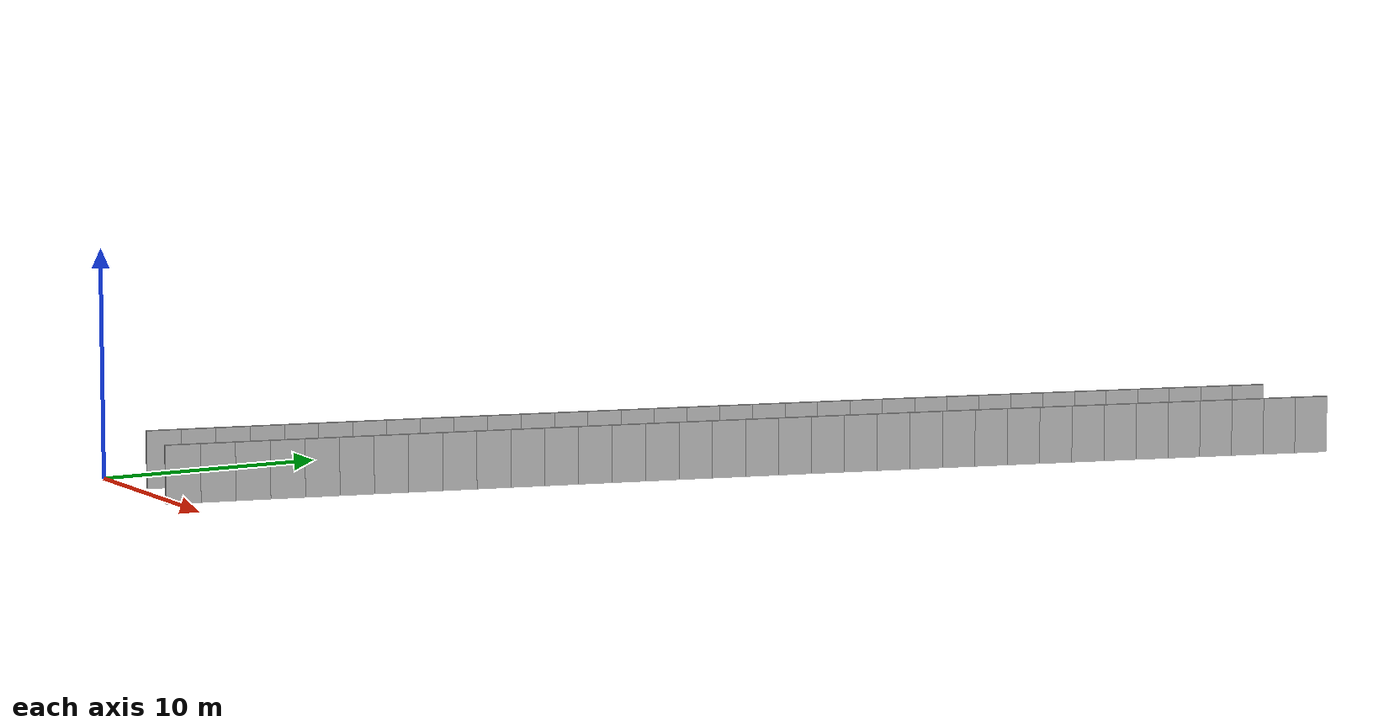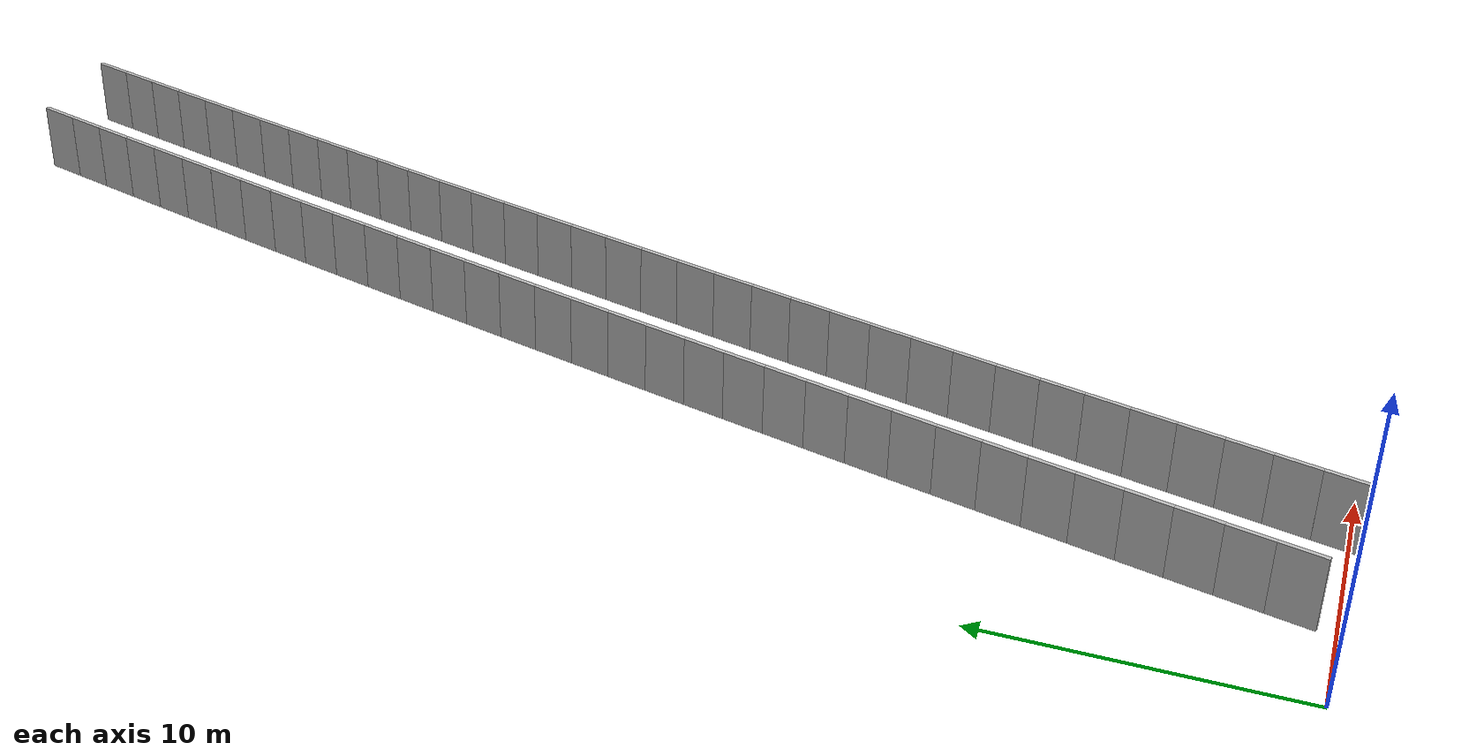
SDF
<?xml version="1.0" ?>
<sdf version="1.6">
  <model name="sps_0330">
    <pose frame="">0 0 0 0 -0 0</pose>
    <static>1</static>
    <self_collide>0</self_collide>
    <allow_auto_disable>0</allow_auto_disable>
    <link name="Wall5034">
      <kinematic>0</kinematic>
      <gravity>1</gravity>
      <self_collide>0</self_collide>
      <collision name="collision">
        <geometry>
          <box>
            <size>1.49648 0.15 2.5</size>
          </box>
        </geometry>
        <pose frame="">0 0 0 0 -0 0</pose>
      </collision>
      <visual name="visual">
        <geometry>
          <box>
            <size>1.49648 0.15 2.5</size>
          </box>
        </geometry>
        <pose frame="">0 0 0 0 -0 0</pose>
        <cast_shadows>1</cast_shadows>
        <transparency>0.0</transparency>
      </visual>
      <pose frame="">20.0343 49.6835 1.25 0 0 -1.8464</pose>
    </link>
    <link name="Wall5035">
      <kinematic>0</kinematic>
      <gravity>1</gravity>
      <self_collide>0</self_collide>
      <collision name="collision">
        <geometry>
          <box>
            <size>1.49658 0.15 2.5</size>
          </box>
        </geometry>
        <pose frame="">0 0 0 0 -0 0</pose>
      </collision>
      <visual name="visual">
        <geometry>
          <box>
            <size>1.49658 0.15 2.5</size>
          </box>
        </geometry>
        <pose frame="">0 0 0 0 -0 0</pose>
        <cast_shadows>1</cast_shadows>
        <transparency>0.0</transparency>
      </visual>
      <pose frame="">19.6283 48.2431 1.25 0 0 -1.84468</pose>
    </link>
    <link name="Wall5036">
      <kinematic>0</kinematic>
      <gravity>1</gravity>
      <self_collide>0</self_collide>
      <collision name="collision">
        <geometry>
          <box>
            <size>1.49657 0.15 2.5</size>
          </box>
        </geometry>
        <pose frame="">0 0 0 0 -0 0</pose>
      </collision>
      <visual name="visual">
        <geometry>
          <box>
            <size>1.49657 0.15 2.5</size>
          </box>
        </geometry>
        <pose frame="">0 0 0 0 -0 0</pose>
        <cast_shadows>1</cast_shadows>
        <transparency>0.0</transparency>
      </visual>
      <pose frame="">19.2246 46.802 1.25 0 0 -1.84316</pose>
    </link>
    <link name="Wall5037">
      <kinematic>0</kinematic>
      <gravity>1</gravity>
      <self_collide>0</self_collide>
      <collision name="collision">
        <geometry>
          <box>
            <size>1.49652 0.15 2.5</size>
          </box>
        </geometry>
        <pose frame="">0 0 0 0 -0 0</pose>
      </collision>
      <visual name="visual">
        <geometry>
          <box>
            <size>1.49652 0.15 2.5</size>
          </box>
        </geometry>
        <pose frame="">0 0 0 0 -0 0</pose>
        <cast_shadows>1</cast_shadows>
        <transparency>0.0</transparency>
      </visual>
      <pose frame="">18.8232 45.3603 1.25 0 0 -1.84152</pose>
    </link>
    <link name="Wall5038">
      <kinematic>0</kinematic>
      <gravity>1</gravity>
      <self_collide>0</self_collide>
      <collision name="collision">
        <geometry>
          <box>
            <size>1.49652 0.15 2.5</size>
          </box>
        </geometry>
        <pose frame="">0 0 0 0 -0 0</pose>
      </collision>
      <visual name="visual">
        <geometry>
          <box>
            <size>1.49652 0.15 2.5</size>
          </box>
        </geometry>
        <pose frame="">0 0 0 0 -0 0</pose>
        <cast_shadows>1</cast_shadows>
        <transparency>0.0</transparency>
      </visual>
      <pose frame="">18.4241 43.918 1.25 0 0 -1.83999</pose>
    </link>
    <link name="Wall5039">
      <kinematic>0</kinematic>
      <gravity>1</gravity>
      <self_collide>0</self_collide>
      <collision name="collision">
        <geometry>
          <box>
            <size>1.49642 0.15 2.5</size>
          </box>
        </geometry>
        <pose frame="">0 0 0 0 -0 0</pose>
      </collision>
      <visual name="visual">
        <geometry>
          <box>
            <size>1.49642 0.15 2.5</size>
          </box>
        </geometry>
        <pose frame="">0 0 0 0 -0 0</pose>
        <cast_shadows>1</cast_shadows>
        <transparency>0.0</transparency>
      </visual>
      <pose frame="">18.0272 42.4751 1.25 0 0 -1.83836</pose>
    </link>
    <link name="Wall5040">
      <kinematic>0</kinematic>
      <gravity>1</gravity>
      <self_collide>0</self_collide>
      <collision name="collision">
        <geometry>
          <box>
            <size>1.49665 0.15 2.5</size>
          </box>
        </geometry>
        <pose frame="">0 0 0 0 -0 0</pose>
      </collision>
      <visual name="visual">
        <geometry>
          <box>
            <size>1.49665 0.15 2.5</size>
          </box>
        </geometry>
        <pose frame="">0 0 0 0 -0 0</pose>
        <cast_shadows>1</cast_shadows>
        <transparency>0.0</transparency>
      </visual>
      <pose frame="">17.6327 41.0315 1.25 0 0 -1.83676</pose>
    </link>
    <link name="Wall5041">
      <kinematic>0</kinematic>
      <gravity>1</gravity>
      <self_collide>0</self_collide>
      <collision name="collision">
        <geometry>
          <box>
            <size>1.49643 0.15 2.5</size>
          </box>
        </geometry>
        <pose frame="">0 0 0 0 -0 0</pose>
      </collision>
      <visual name="visual">
        <geometry>
          <box>
            <size>1.49643 0.15 2.5</size>
          </box>
        </geometry>
        <pose frame="">0 0 0 0 -0 0</pose>
        <cast_shadows>1</cast_shadows>
        <transparency>0.0</transparency>
      </visual>
      <pose frame="">17.2405 39.5873 1.25 0 0 -1.83527</pose>
    </link>
    <link name="Wall5042">
      <kinematic>0</kinematic>
      <gravity>1</gravity>
      <self_collide>0</self_collide>
      <collision name="collision">
        <geometry>
          <box>
            <size>1.49635 0.15 2.5</size>
          </box>
        </geometry>
        <pose frame="">0 0 0 0 -0 0</pose>
      </collision>
      <visual name="visual">
        <geometry>
          <box>
            <size>1.49635 0.15 2.5</size>
          </box>
        </geometry>
        <pose frame="">0 0 0 0 -0 0</pose>
        <cast_shadows>1</cast_shadows>
        <transparency>0.0</transparency>
      </visual>
      <pose frame="">16.8505 38.1426 1.25 0 0 -1.83368</pose>
    </link>
    <link name="Wall5043">
      <kinematic>0</kinematic>
      <gravity>1</gravity>
      <self_collide>0</self_collide>
      <collision name="collision">
        <geometry>
          <box>
            <size>1.4966 0.15 2.5</size>
          </box>
        </geometry>
        <pose frame="">0 0 0 0 -0 0</pose>
      </collision>
      <visual name="visual">
        <geometry>
          <box>
            <size>1.4966 0.15 2.5</size>
          </box>
        </geometry>
        <pose frame="">0 0 0 0 -0 0</pose>
        <cast_shadows>1</cast_shadows>
        <transparency>0.0</transparency>
      </visual>
      <pose frame="">16.4627 36.6972 1.25 0 0 -1.83208</pose>
    </link>
    <link name="Wall5044">
      <kinematic>0</kinematic>
      <gravity>1</gravity>
      <self_collide>0</self_collide>
      <collision name="collision">
        <geometry>
          <box>
            <size>1.49656 0.15 2.5</size>
          </box>
        </geometry>
        <pose frame="">0 0 0 0 -0 0</pose>
      </collision>
      <visual name="visual">
        <geometry>
          <box>
            <size>1.49656 0.15 2.5</size>
          </box>
        </geometry>
        <pose frame="">0 0 0 0 -0 0</pose>
        <cast_shadows>1</cast_shadows>
        <transparency>0.0</transparency>
      </visual>
      <pose frame="">16.0774 35.2511 1.25 0 0 -1.8304</pose>
    </link>
    <link name="Wall5045">
      <kinematic>0</kinematic>
      <gravity>1</gravity>
      <self_collide>0</self_collide>
      <collision name="collision">
        <geometry>
          <box>
            <size>1.49642 0.15 2.5</size>
          </box>
        </geometry>
        <pose frame="">0 0 0 0 -0 0</pose>
      </collision>
      <visual name="visual">
        <geometry>
          <box>
            <size>1.49642 0.15 2.5</size>
          </box>
        </geometry>
        <pose frame="">0 0 0 0 -0 0</pose>
        <cast_shadows>1</cast_shadows>
        <transparency>0.0</transparency>
      </visual>
      <pose frame="">15.6943 33.8045 1.25 0 0 -1.82894</pose>
    </link>
    <link name="Wall5046">
      <kinematic>0</kinematic>
      <gravity>1</gravity>
      <self_collide>0</self_collide>
      <collision name="collision">
        <geometry>
          <box>
            <size>1.49669 0.15 2.5</size>
          </box>
        </geometry>
        <pose frame="">0 0 0 0 -0 0</pose>
      </collision>
      <visual name="visual">
        <geometry>
          <box>
            <size>1.49669 0.15 2.5</size>
          </box>
        </geometry>
        <pose frame="">0 0 0 0 -0 0</pose>
        <cast_shadows>1</cast_shadows>
        <transparency>0.0</transparency>
      </visual>
      <pose frame="">15.3135 32.3572 1.25 0 0 -1.82721</pose>
    </link>
    <link name="Wall5047">
      <kinematic>0</kinematic>
      <gravity>1</gravity>
      <self_collide>0</self_collide>
      <collision name="collision">
        <geometry>
          <box>
            <size>1.49638 0.15 2.5</size>
          </box>
        </geometry>
        <pose frame="">0 0 0 0 -0 0</pose>
      </collision>
      <visual name="visual">
        <geometry>
          <box>
            <size>1.49638 0.15 2.5</size>
          </box>
        </geometry>
        <pose frame="">0 0 0 0 -0 0</pose>
        <cast_shadows>1</cast_shadows>
        <transparency>0.0</transparency>
      </visual>
      <pose frame="">14.935 30.9093 1.25 0 0 -1.82579</pose>
    </link>
    <link name="Wall5048">
      <kinematic>0</kinematic>
      <gravity>1</gravity>
      <self_collide>0</self_collide>
      <collision name="collision">
        <geometry>
          <box>
            <size>1.4966 0.15 2.5</size>
          </box>
        </geometry>
        <pose frame="">0 0 0 0 -0 0</pose>
      </collision>
      <visual name="visual">
        <geometry>
          <box>
            <size>1.4966 0.15 2.5</size>
          </box>
        </geometry>
        <pose frame="">0 0 0 0 -0 0</pose>
        <cast_shadows>1</cast_shadows>
        <transparency>0.0</transparency>
      </visual>
      <pose frame="">14.5587 29.4609 1.25 0 0 -1.82406</pose>
    </link>
    <link name="Wall5049">
      <kinematic>0</kinematic>
      <gravity>1</gravity>
      <self_collide>0</self_collide>
      <collision name="collision">
        <geometry>
          <box>
            <size>1.49658 0.15 2.5</size>
          </box>
        </geometry>
        <pose frame="">0 0 0 0 -0 0</pose>
      </collision>
      <visual name="visual">
        <geometry>
          <box>
            <size>1.49658 0.15 2.5</size>
          </box>
        </geometry>
        <pose frame="">0 0 0 0 -0 0</pose>
        <cast_shadows>1</cast_shadows>
        <transparency>0.0</transparency>
      </visual>
      <pose frame="">14.1848 28.0118 1.25 0 0 -1.82255</pose>
    </link>
    <link name="Wall5050">
      <kinematic>0</kinematic>
      <gravity>1</gravity>
      <self_collide>0</self_collide>
      <collision name="collision">
        <geometry>
          <box>
            <size>1.49639 0.15 2.5</size>
          </box>
        </geometry>
        <pose frame="">0 0 0 0 -0 0</pose>
      </collision>
      <visual name="visual">
        <geometry>
          <box>
            <size>1.49639 0.15 2.5</size>
          </box>
        </geometry>
        <pose frame="">0 0 0 0 -0 0</pose>
        <cast_shadows>1</cast_shadows>
        <transparency>0.0</transparency>
      </visual>
      <pose frame="">13.8131 26.5622 1.25 0 0 -1.82107</pose>
    </link>
    <link name="Wall5051">
      <kinematic>0</kinematic>
      <gravity>1</gravity>
      <self_collide>0</self_collide>
      <collision name="collision">
        <geometry>
          <box>
            <size>1.49657 0.15 2.5</size>
          </box>
        </geometry>
        <pose frame="">0 0 0 0 -0 0</pose>
      </collision>
      <visual name="visual">
        <geometry>
          <box>
            <size>1.49657 0.15 2.5</size>
          </box>
        </geometry>
        <pose frame="">0 0 0 0 -0 0</pose>
        <cast_shadows>1</cast_shadows>
        <transparency>0.0</transparency>
      </visual>
      <pose frame="">13.4438 25.112 1.25 0 0 -1.81923</pose>
    </link>
    <link name="Wall5052">
      <kinematic>0</kinematic>
      <gravity>1</gravity>
      <self_collide>0</self_collide>
      <collision name="collision">
        <geometry>
          <box>
            <size>1.49643 0.15 2.5</size>
          </box>
        </geometry>
        <pose frame="">0 0 0 0 -0 0</pose>
      </collision>
      <visual name="visual">
        <geometry>
          <box>
            <size>1.49643 0.15 2.5</size>
          </box>
        </geometry>
        <pose frame="">0 0 0 0 -0 0</pose>
        <cast_shadows>1</cast_shadows>
        <transparency>0.0</transparency>
      </visual>
      <pose frame="">13.0769 23.6612 1.25 0 0 -1.81786</pose>
    </link>
    <link name="Wall5053">
      <kinematic>0</kinematic>
      <gravity>1</gravity>
      <self_collide>0</self_collide>
      <collision name="collision">
        <geometry>
          <box>
            <size>1.49663 0.15 2.5</size>
          </box>
        </geometry>
        <pose frame="">0 0 0 0 -0 0</pose>
      </collision>
      <visual name="visual">
        <geometry>
          <box>
            <size>1.49663 0.15 2.5</size>
          </box>
        </geometry>
        <pose frame="">0 0 0 0 -0 0</pose>
        <cast_shadows>1</cast_shadows>
        <transparency>0.0</transparency>
      </visual>
      <pose frame="">12.7121 22.2098 1.25 0 0 -1.81623</pose>
    </link>
    <link name="Wall5054">
      <kinematic>0</kinematic>
      <gravity>1</gravity>
      <self_collide>0</self_collide>
      <collision name="collision">
        <geometry>
          <box>
            <size>1.49663 0.15 2.5</size>
          </box>
        </geometry>
        <pose frame="">0 0 0 0 -0 0</pose>
      </collision>
      <visual name="visual">
        <geometry>
          <box>
            <size>1.49663 0.15 2.5</size>
          </box>
        </geometry>
        <pose frame="">0 0 0 0 -0 0</pose>
        <cast_shadows>1</cast_shadows>
        <transparency>0.0</transparency>
      </visual>
      <pose frame="">12.3496 20.7577 1.25 0 0 -1.81455</pose>
    </link>
    <link name="Wall5055">
      <kinematic>0</kinematic>
      <gravity>1</gravity>
      <self_collide>0</self_collide>
      <collision name="collision">
        <geometry>
          <box>
            <size>1.49651 0.15 2.5</size>
          </box>
        </geometry>
        <pose frame="">0 0 0 0 -0 0</pose>
      </collision>
      <visual name="visual">
        <geometry>
          <box>
            <size>1.49651 0.15 2.5</size>
          </box>
        </geometry>
        <pose frame="">0 0 0 0 -0 0</pose>
        <cast_shadows>1</cast_shadows>
        <transparency>0.0</transparency>
      </visual>
      <pose frame="">11.9896 19.3051 1.25 0 0 -1.81302</pose>
    </link>
    <link name="Wall5056">
      <kinematic>0</kinematic>
      <gravity>1</gravity>
      <self_collide>0</self_collide>
      <collision name="collision">
        <geometry>
          <box>
            <size>1.49648 0.15 2.5</size>
          </box>
        </geometry>
        <pose frame="">0 0 0 0 -0 0</pose>
      </collision>
      <visual name="visual">
        <geometry>
          <box>
            <size>1.49648 0.15 2.5</size>
          </box>
        </geometry>
        <pose frame="">0 0 0 0 -0 0</pose>
        <cast_shadows>1</cast_shadows>
        <transparency>0.0</transparency>
      </visual>
      <pose frame="">11.6318 17.852 1.25 0 0 -1.81142</pose>
    </link>
    <link name="Wall5057">
      <kinematic>0</kinematic>
      <gravity>1</gravity>
      <self_collide>0</self_collide>
      <collision name="collision">
        <geometry>
          <box>
            <size>1.4966 0.15 2.5</size>
          </box>
        </geometry>
        <pose frame="">0 0 0 0 -0 0</pose>
      </collision>
      <visual name="visual">
        <geometry>
          <box>
            <size>1.4966 0.15 2.5</size>
          </box>
        </geometry>
        <pose frame="">0 0 0 0 -0 0</pose>
        <cast_shadows>1</cast_shadows>
        <transparency>0.0</transparency>
      </visual>
      <pose frame="">11.2763 16.3983 1.25 0 0 -1.80985</pose>
    </link>
    <link name="Wall5058">
      <kinematic>0</kinematic>
      <gravity>1</gravity>
      <self_collide>0</self_collide>
      <collision name="collision">
        <geometry>
          <box>
            <size>1.49641 0.15 2.5</size>
          </box>
        </geometry>
        <pose frame="">0 0 0 0 -0 0</pose>
      </collision>
      <visual name="visual">
        <geometry>
          <box>
            <size>1.49641 0.15 2.5</size>
          </box>
        </geometry>
        <pose frame="">0 0 0 0 -0 0</pose>
        <cast_shadows>1</cast_shadows>
        <transparency>0.0</transparency>
      </visual>
      <pose frame="">10.9231 14.9441 1.25 0 0 -1.80829</pose>
    </link>
    <link name="Wall5059">
      <kinematic>0</kinematic>
      <gravity>1</gravity>
      <self_collide>0</self_collide>
      <collision name="collision">
        <geometry>
          <box>
            <size>1.49665 0.15 2.5</size>
          </box>
        </geometry>
        <pose frame="">0 0 0 0 -0 0</pose>
      </collision>
      <visual name="visual">
        <geometry>
          <box>
            <size>1.49665 0.15 2.5</size>
          </box>
        </geometry>
        <pose frame="">0 0 0 0 -0 0</pose>
        <cast_shadows>1</cast_shadows>
        <transparency>0.0</transparency>
      </visual>
      <pose frame="">10.5721 13.4893 1.25 0 0 -1.8067</pose>
    </link>
    <link name="Wall5060">
      <kinematic>0</kinematic>
      <gravity>1</gravity>
      <self_collide>0</self_collide>
      <collision name="collision">
        <geometry>
          <box>
            <size>1.49649 0.15 2.5</size>
          </box>
        </geometry>
        <pose frame="">0 0 0 0 -0 0</pose>
      </collision>
      <visual name="visual">
        <geometry>
          <box>
            <size>1.49649 0.15 2.5</size>
          </box>
        </geometry>
        <pose frame="">0 0 0 0 -0 0</pose>
        <cast_shadows>1</cast_shadows>
        <transparency>0.0</transparency>
      </visual>
      <pose frame="">10.2234 12.0339 1.25 0 0 -1.80521</pose>
    </link>
    <link name="Wall5061">
      <kinematic>0</kinematic>
      <gravity>1</gravity>
      <self_collide>0</self_collide>
      <collision name="collision">
        <geometry>
          <box>
            <size>1.4966 0.15 2.5</size>
          </box>
        </geometry>
        <pose frame="">0 0 0 0 -0 0</pose>
      </collision>
      <visual name="visual">
        <geometry>
          <box>
            <size>1.4966 0.15 2.5</size>
          </box>
        </geometry>
        <pose frame="">0 0 0 0 -0 0</pose>
        <cast_shadows>1</cast_shadows>
        <transparency>0.0</transparency>
      </visual>
      <pose frame="">9.87704 10.578 1.25 0 0 -1.80356</pose>
    </link>
    <link name="Wall5062">
      <kinematic>0</kinematic>
      <gravity>1</gravity>
      <self_collide>0</self_collide>
      <collision name="collision">
        <geometry>
          <box>
            <size>1.49639 0.15 2.5</size>
          </box>
        </geometry>
        <pose frame="">0 0 0 0 -0 0</pose>
      </collision>
      <visual name="visual">
        <geometry>
          <box>
            <size>1.49639 0.15 2.5</size>
          </box>
        </geometry>
        <pose frame="">0 0 0 0 -0 0</pose>
        <cast_shadows>1</cast_shadows>
        <transparency>0.0</transparency>
      </visual>
      <pose frame="">9.53304 9.12157 1.25 0 0 -1.80192</pose>
    </link>
    <link name="Wall5063">
      <kinematic>0</kinematic>
      <gravity>1</gravity>
      <self_collide>0</self_collide>
      <collision name="collision">
        <geometry>
          <box>
            <size>1.49643 0.15 2.5</size>
          </box>
        </geometry>
        <pose frame="">0 0 0 0 -0 0</pose>
      </collision>
      <visual name="visual">
        <geometry>
          <box>
            <size>1.49643 0.15 2.5</size>
          </box>
        </geometry>
        <pose frame="">0 0 0 0 -0 0</pose>
        <cast_shadows>1</cast_shadows>
        <transparency>0.0</transparency>
      </visual>
      <pose frame="">9.19137 7.66469 1.25 0 0 -1.8004</pose>
    </link>
    <link name="Wall5064">
      <kinematic>0</kinematic>
      <gravity>1</gravity>
      <self_collide>0</self_collide>
      <collision name="collision">
        <geometry>
          <box>
            <size>1.49654 0.15 2.5</size>
          </box>
        </geometry>
        <pose frame="">0 0 0 0 -0 0</pose>
      </collision>
      <visual name="visual">
        <geometry>
          <box>
            <size>1.49654 0.15 2.5</size>
          </box>
        </geometry>
        <pose frame="">0 0 0 0 -0 0</pose>
        <cast_shadows>1</cast_shadows>
        <transparency>0.0</transparency>
      </visual>
      <pose frame="">8.85198 6.2072 1.25 0 0 -1.79875</pose>
    </link>
    <link name="Wall5065">
      <kinematic>0</kinematic>
      <gravity>1</gravity>
      <self_collide>0</self_collide>
      <collision name="collision">
        <geometry>
          <box>
            <size>1.49654 0.15 2.5</size>
          </box>
        </geometry>
        <pose frame="">0 0 0 0 -0 0</pose>
      </collision>
      <visual name="visual">
        <geometry>
          <box>
            <size>1.49654 0.15 2.5</size>
          </box>
        </geometry>
        <pose frame="">0 0 0 0 -0 0</pose>
        <cast_shadows>1</cast_shadows>
        <transparency>0.0</transparency>
      </visual>
      <pose frame="">8.51498 4.7491 1.25 0 0 -1.79712</pose>
    </link>
    <link name="Wall5066">
      <kinematic>0</kinematic>
      <gravity>1</gravity>
      <self_collide>0</self_collide>
      <collision name="collision">
        <geometry>
          <box>
            <size>1.49646 0.15 2.5</size>
          </box>
        </geometry>
        <pose frame="">0 0 0 0 -0 0</pose>
      </collision>
      <visual name="visual">
        <geometry>
          <box>
            <size>1.49646 0.15 2.5</size>
          </box>
        </geometry>
        <pose frame="">0 0 0 0 -0 0</pose>
        <cast_shadows>1</cast_shadows>
        <transparency>0.0</transparency>
      </visual>
      <pose frame="">8.18026 3.29051 1.25 0 0 -1.79562</pose>
    </link>
    <link name="Wall5067">
      <kinematic>0</kinematic>
      <gravity>1</gravity>
      <self_collide>0</self_collide>
      <collision name="collision">
        <geometry>
          <box>
            <size>1.49657 0.15 2.5</size>
          </box>
        </geometry>
        <pose frame="">0 0 0 0 -0 0</pose>
      </collision>
      <visual name="visual">
        <geometry>
          <box>
            <size>1.49657 0.15 2.5</size>
          </box>
        </geometry>
        <pose frame="">0 0 0 0 -0 0</pose>
        <cast_shadows>1</cast_shadows>
        <transparency>0.0</transparency>
      </visual>
      <pose frame="">7.84774 1.8314 1.25 0 0 -1.7941</pose>
    </link>
    <link name="Wall5068">
      <kinematic>0</kinematic>
      <gravity>1</gravity>
      <self_collide>0</self_collide>
      <collision name="collision">
        <geometry>
          <box>
            <size>1.49659 0.15 2.5</size>
          </box>
        </geometry>
        <pose frame="">0 0 0 0 -0 0</pose>
      </collision>
      <visual name="visual">
        <geometry>
          <box>
            <size>1.49659 0.15 2.5</size>
          </box>
        </geometry>
        <pose frame="">0 0 0 0 -0 0</pose>
        <cast_shadows>1</cast_shadows>
        <transparency>0.0</transparency>
      </visual>
      <pose frame="">7.51763 0.371688 1.25 0 0 -1.7923</pose>
    </link>
    <link name="Wall6831">
      <kinematic>0</kinematic>
      <gravity>1</gravity>
      <self_collide>0</self_collide>
      <collision name="collision">
        <geometry>
          <box>
            <size>1.50323 0.15 2.5</size>
          </box>
        </geometry>
        <pose frame="">0 0 0 0 -0 0</pose>
      </collision>
      <visual name="visual">
        <geometry>
          <box>
            <size>1.50323 0.15 2.5</size>
          </box>
        </geometry>
        <pose frame="">0 0 0 0 -0 0</pose>
        <cast_shadows>1</cast_shadows>
        <transparency>0.0</transparency>
      </visual>
      <pose frame="">15.6434 49.3631 1.25 0 0 -1.84466</pose>
    </link>
    <link name="Wall6832">
      <kinematic>0</kinematic>
      <gravity>1</gravity>
      <self_collide>0</self_collide>
      <collision name="collision">
        <geometry>
          <box>
            <size>1.503 0.15 2.5</size>
          </box>
        </geometry>
        <pose frame="">0 0 0 0 -0 0</pose>
      </collision>
      <visual name="visual">
        <geometry>
          <box>
            <size>1.503 0.15 2.5</size>
          </box>
        </geometry>
        <pose frame="">0 0 0 0 -0 0</pose>
        <cast_shadows>1</cast_shadows>
        <transparency>0.0</transparency>
      </visual>
      <pose frame="">15.2379 47.9157 1.25 0 0 -1.84323</pose>
    </link>
    <link name="Wall6833">
      <kinematic>0</kinematic>
      <gravity>1</gravity>
      <self_collide>0</self_collide>
      <collision name="collision">
        <geometry>
          <box>
            <size>1.50319 0.15 2.5</size>
          </box>
        </geometry>
        <pose frame="">0 0 0 0 -0 0</pose>
      </collision>
      <visual name="visual">
        <geometry>
          <box>
            <size>1.50319 0.15 2.5</size>
          </box>
        </geometry>
        <pose frame="">0 0 0 0 -0 0</pose>
        <cast_shadows>1</cast_shadows>
        <transparency>0.0</transparency>
      </visual>
      <pose frame="">14.8346 46.4677 1.25 0 0 -1.84155</pose>
    </link>
    <link name="Wall6834">
      <kinematic>0</kinematic>
      <gravity>1</gravity>
      <self_collide>0</self_collide>
      <collision name="collision">
        <geometry>
          <box>
            <size>1.50307 0.15 2.5</size>
          </box>
        </geometry>
        <pose frame="">0 0 0 0 -0 0</pose>
      </collision>
      <visual name="visual">
        <geometry>
          <box>
            <size>1.50307 0.15 2.5</size>
          </box>
        </geometry>
        <pose frame="">0 0 0 0 -0 0</pose>
        <cast_shadows>1</cast_shadows>
        <transparency>0.0</transparency>
      </visual>
      <pose frame="">14.4338 45.019 1.25 0 0 -1.83989</pose>
    </link>
    <link name="Wall6835">
      <kinematic>0</kinematic>
      <gravity>1</gravity>
      <self_collide>0</self_collide>
      <collision name="collision">
        <geometry>
          <box>
            <size>1.50289 0.15 2.5</size>
          </box>
        </geometry>
        <pose frame="">0 0 0 0 -0 0</pose>
      </collision>
      <visual name="visual">
        <geometry>
          <box>
            <size>1.50289 0.15 2.5</size>
          </box>
        </geometry>
        <pose frame="">0 0 0 0 -0 0</pose>
        <cast_shadows>1</cast_shadows>
        <transparency>0.0</transparency>
      </visual>
      <pose frame="">14.0353 43.5698 1.25 0 0 -1.8384</pose>
    </link>
    <link name="Wall6836">
      <kinematic>0</kinematic>
      <gravity>1</gravity>
      <self_collide>0</self_collide>
      <collision name="collision">
        <geometry>
          <box>
            <size>1.50308 0.15 2.5</size>
          </box>
        </geometry>
        <pose frame="">0 0 0 0 -0 0</pose>
      </collision>
      <visual name="visual">
        <geometry>
          <box>
            <size>1.50308 0.15 2.5</size>
          </box>
        </geometry>
        <pose frame="">0 0 0 0 -0 0</pose>
        <cast_shadows>1</cast_shadows>
        <transparency>0.0</transparency>
      </visual>
      <pose frame="">13.639 42.12 1.25 0 0 -1.83685</pose>
    </link>
    <link name="Wall6837">
      <kinematic>0</kinematic>
      <gravity>1</gravity>
      <self_collide>0</self_collide>
      <collision name="collision">
        <geometry>
          <box>
            <size>1.50321 0.15 2.5</size>
          </box>
        </geometry>
        <pose frame="">0 0 0 0 -0 0</pose>
      </collision>
      <visual name="visual">
        <geometry>
          <box>
            <size>1.50321 0.15 2.5</size>
          </box>
        </geometry>
        <pose frame="">0 0 0 0 -0 0</pose>
        <cast_shadows>1</cast_shadows>
        <transparency>0.0</transparency>
      </visual>
      <pose frame="">13.245 40.6694 1.25 0 0 -1.83515</pose>
    </link>
    <link name="Wall6838">
      <kinematic>0</kinematic>
      <gravity>1</gravity>
      <self_collide>0</self_collide>
      <collision name="collision">
        <geometry>
          <box>
            <size>1.50306 0.15 2.5</size>
          </box>
        </geometry>
        <pose frame="">0 0 0 0 -0 0</pose>
      </collision>
      <visual name="visual">
        <geometry>
          <box>
            <size>1.50306 0.15 2.5</size>
          </box>
        </geometry>
        <pose frame="">0 0 0 0 -0 0</pose>
        <cast_shadows>1</cast_shadows>
        <transparency>0.0</transparency>
      </visual>
      <pose frame="">12.8534 39.2182 1.25 0 0 -1.8337</pose>
    </link>
    <link name="Wall6839">
      <kinematic>0</kinematic>
      <gravity>1</gravity>
      <self_collide>0</self_collide>
      <collision name="collision">
        <geometry>
          <box>
            <size>1.5032 0.15 2.5</size>
          </box>
        </geometry>
        <pose frame="">0 0 0 0 -0 0</pose>
      </collision>
      <visual name="visual">
        <geometry>
          <box>
            <size>1.5032 0.15 2.5</size>
          </box>
        </geometry>
        <pose frame="">0 0 0 0 -0 0</pose>
        <cast_shadows>1</cast_shadows>
        <transparency>0.0</transparency>
      </visual>
      <pose frame="">12.464 37.7664 1.25 0 0 -1.832</pose>
    </link>
    <link name="Wall6840">
      <kinematic>0</kinematic>
      <gravity>1</gravity>
      <self_collide>0</self_collide>
      <collision name="collision">
        <geometry>
          <box>
            <size>1.50298 0.15 2.5</size>
          </box>
        </geometry>
        <pose frame="">0 0 0 0 -0 0</pose>
      </collision>
      <visual name="visual">
        <geometry>
          <box>
            <size>1.50298 0.15 2.5</size>
          </box>
        </geometry>
        <pose frame="">0 0 0 0 -0 0</pose>
        <cast_shadows>1</cast_shadows>
        <transparency>0.0</transparency>
      </visual>
      <pose frame="">12.0769 36.314 1.25 0 0 -1.83052</pose>
    </link>
    <link name="Wall6841">
      <kinematic>0</kinematic>
      <gravity>1</gravity>
      <self_collide>0</self_collide>
      <collision name="collision">
        <geometry>
          <box>
            <size>1.50302 0.15 2.5</size>
          </box>
        </geometry>
        <pose frame="">0 0 0 0 -0 0</pose>
      </collision>
      <visual name="visual">
        <geometry>
          <box>
            <size>1.50302 0.15 2.5</size>
          </box>
        </geometry>
        <pose frame="">0 0 0 0 -0 0</pose>
        <cast_shadows>1</cast_shadows>
        <transparency>0.0</transparency>
      </visual>
      <pose frame="">11.6921 34.8611 1.25 0 0 -1.82887</pose>
    </link>
    <link name="Wall6842">
      <kinematic>0</kinematic>
      <gravity>1</gravity>
      <self_collide>0</self_collide>
      <collision name="collision">
        <geometry>
          <box>
            <size>1.50317 0.15 2.5</size>
          </box>
        </geometry>
        <pose frame="">0 0 0 0 -0 0</pose>
      </collision>
      <visual name="visual">
        <geometry>
          <box>
            <size>1.50317 0.15 2.5</size>
          </box>
        </geometry>
        <pose frame="">0 0 0 0 -0 0</pose>
        <cast_shadows>1</cast_shadows>
        <transparency>0.0</transparency>
      </visual>
      <pose frame="">11.3096 33.4075 1.25 0 0 -1.82734</pose>
    </link>
    <link name="Wall6843">
      <kinematic>0</kinematic>
      <gravity>1</gravity>
      <self_collide>0</self_collide>
      <collision name="collision">
        <geometry>
          <box>
            <size>1.50316 0.15 2.5</size>
          </box>
        </geometry>
        <pose frame="">0 0 0 0 -0 0</pose>
      </collision>
      <visual name="visual">
        <geometry>
          <box>
            <size>1.50316 0.15 2.5</size>
          </box>
        </geometry>
        <pose frame="">0 0 0 0 -0 0</pose>
        <cast_shadows>1</cast_shadows>
        <transparency>0.0</transparency>
      </visual>
      <pose frame="">10.9293 31.9532 1.25 0 0 -1.8257</pose>
    </link>
    <link name="Wall6844">
      <kinematic>0</kinematic>
      <gravity>1</gravity>
      <self_collide>0</self_collide>
      <collision name="collision">
        <geometry>
          <box>
            <size>1.50296 0.15 2.5</size>
          </box>
        </geometry>
        <pose frame="">0 0 0 0 -0 0</pose>
      </collision>
      <visual name="visual">
        <geometry>
          <box>
            <size>1.50296 0.15 2.5</size>
          </box>
        </geometry>
        <pose frame="">0 0 0 0 -0 0</pose>
        <cast_shadows>1</cast_shadows>
        <transparency>0.0</transparency>
      </visual>
      <pose frame="">10.5515 30.4984 1.25 0 0 -1.82406</pose>
    </link>
    <link name="Wall6845">
      <kinematic>0</kinematic>
      <gravity>1</gravity>
      <self_collide>0</self_collide>
      <collision name="collision">
        <geometry>
          <box>
            <size>1.50318 0.15 2.5</size>
          </box>
        </geometry>
        <pose frame="">0 0 0 0 -0 0</pose>
      </collision>
      <visual name="visual">
        <geometry>
          <box>
            <size>1.50318 0.15 2.5</size>
          </box>
        </geometry>
        <pose frame="">0 0 0 0 -0 0</pose>
        <cast_shadows>1</cast_shadows>
        <transparency>0.0</transparency>
      </visual>
      <pose frame="">10.176 29.043 1.25 0 0 -1.82251</pose>
    </link>
    <link name="Wall6846">
      <kinematic>0</kinematic>
      <gravity>1</gravity>
      <self_collide>0</self_collide>
      <collision name="collision">
        <geometry>
          <box>
            <size>1.50299 0.15 2.5</size>
          </box>
        </geometry>
        <pose frame="">0 0 0 0 -0 0</pose>
      </collision>
      <visual name="visual">
        <geometry>
          <box>
            <size>1.50299 0.15 2.5</size>
          </box>
        </geometry>
        <pose frame="">0 0 0 0 -0 0</pose>
        <cast_shadows>1</cast_shadows>
        <transparency>0.0</transparency>
      </visual>
      <pose frame="">9.80276 27.587 1.25 0 0 -1.82103</pose>
    </link>
    <link name="Wall6847">
      <kinematic>0</kinematic>
      <gravity>1</gravity>
      <self_collide>0</self_collide>
      <collision name="collision">
        <geometry>
          <box>
            <size>1.50299 0.15 2.5</size>
          </box>
        </geometry>
        <pose frame="">0 0 0 0 -0 0</pose>
      </collision>
      <visual name="visual">
        <geometry>
          <box>
            <size>1.50299 0.15 2.5</size>
          </box>
        </geometry>
        <pose frame="">0 0 0 0 -0 0</pose>
        <cast_shadows>1</cast_shadows>
        <transparency>0.0</transparency>
      </visual>
      <pose frame="">9.43175 26.1305 1.25 0 0 -1.8194</pose>
    </link>
    <link name="Wall6848">
      <kinematic>0</kinematic>
      <gravity>1</gravity>
      <self_collide>0</self_collide>
      <collision name="collision">
        <geometry>
          <box>
            <size>1.50328 0.15 2.5</size>
          </box>
        </geometry>
        <pose frame="">0 0 0 0 -0 0</pose>
      </collision>
      <visual name="visual">
        <geometry>
          <box>
            <size>1.50328 0.15 2.5</size>
          </box>
        </geometry>
        <pose frame="">0 0 0 0 -0 0</pose>
        <cast_shadows>1</cast_shadows>
        <transparency>0.0</transparency>
      </visual>
      <pose frame="">9.06304 24.6733 1.25 0 0 -1.81784</pose>
    </link>
    <link name="Wall6849">
      <kinematic>0</kinematic>
      <gravity>1</gravity>
      <self_collide>0</self_collide>
      <collision name="collision">
        <geometry>
          <box>
            <size>1.503 0.15 2.5</size>
          </box>
        </geometry>
        <pose frame="">0 0 0 0 -0 0</pose>
      </collision>
      <visual name="visual">
        <geometry>
          <box>
            <size>1.503 0.15 2.5</size>
          </box>
        </geometry>
        <pose frame="">0 0 0 0 -0 0</pose>
        <cast_shadows>1</cast_shadows>
        <transparency>0.0</transparency>
      </visual>
      <pose frame="">8.69674 23.2155 1.25 0 0 -1.81609</pose>
    </link>
    <link name="Wall6850">
      <kinematic>0</kinematic>
      <gravity>1</gravity>
      <self_collide>0</self_collide>
      <collision name="collision">
        <geometry>
          <box>
            <size>1.503 0.15 2.5</size>
          </box>
        </geometry>
        <pose frame="">0 0 0 0 -0 0</pose>
      </collision>
      <visual name="visual">
        <geometry>
          <box>
            <size>1.503 0.15 2.5</size>
          </box>
        </geometry>
        <pose frame="">0 0 0 0 -0 0</pose>
        <cast_shadows>1</cast_shadows>
        <transparency>0.0</transparency>
      </visual>
      <pose frame="">8.33285 21.7572 1.25 0 0 -1.81458</pose>
    </link>
    <link name="Wall6851">
      <kinematic>0</kinematic>
      <gravity>1</gravity>
      <self_collide>0</self_collide>
      <collision name="collision">
        <geometry>
          <box>
            <size>1.50312 0.15 2.5</size>
          </box>
        </geometry>
        <pose frame="">0 0 0 0 -0 0</pose>
      </collision>
      <visual name="visual">
        <geometry>
          <box>
            <size>1.50312 0.15 2.5</size>
          </box>
        </geometry>
        <pose frame="">0 0 0 0 -0 0</pose>
        <cast_shadows>1</cast_shadows>
        <transparency>0.0</transparency>
      </visual>
      <pose frame="">7.97115 20.2983 1.25 0 0 -1.81306</pose>
    </link>
    <link name="Wall6852">
      <kinematic>0</kinematic>
      <gravity>1</gravity>
      <self_collide>0</self_collide>
      <collision name="collision">
        <geometry>
          <box>
            <size>1.50309 0.15 2.5</size>
          </box>
        </geometry>
        <pose frame="">0 0 0 0 -0 0</pose>
      </collision>
      <visual name="visual">
        <geometry>
          <box>
            <size>1.50309 0.15 2.5</size>
          </box>
        </geometry>
        <pose frame="">0 0 0 0 -0 0</pose>
        <cast_shadows>1</cast_shadows>
        <transparency>0.0</transparency>
      </visual>
      <pose frame="">7.61175 18.8388 1.25 0 0 -1.81143</pose>
    </link>
    <link name="Wall6853">
      <kinematic>0</kinematic>
      <gravity>1</gravity>
      <self_collide>0</self_collide>
      <collision name="collision">
        <geometry>
          <box>
            <size>1.50314 0.15 2.5</size>
          </box>
        </geometry>
        <pose frame="">0 0 0 0 -0 0</pose>
      </collision>
      <visual name="visual">
        <geometry>
          <box>
            <size>1.50314 0.15 2.5</size>
          </box>
        </geometry>
        <pose frame="">0 0 0 0 -0 0</pose>
        <cast_shadows>1</cast_shadows>
        <transparency>0.0</transparency>
      </visual>
      <pose frame="">7.25466 17.3787 1.25 0 0 -1.80988</pose>
    </link>
    <link name="Wall6854">
      <kinematic>0</kinematic>
      <gravity>1</gravity>
      <self_collide>0</self_collide>
      <collision name="collision">
        <geometry>
          <box>
            <size>1.50319 0.15 2.5</size>
          </box>
        </geometry>
        <pose frame="">0 0 0 0 -0 0</pose>
      </collision>
      <visual name="visual">
        <geometry>
          <box>
            <size>1.50319 0.15 2.5</size>
          </box>
        </geometry>
        <pose frame="">0 0 0 0 -0 0</pose>
        <cast_shadows>1</cast_shadows>
        <transparency>0.0</transparency>
      </visual>
      <pose frame="">6.89986 15.918 1.25 0 0 -1.80828</pose>
    </link>
    <link name="Wall6855">
      <kinematic>0</kinematic>
      <gravity>1</gravity>
      <self_collide>0</self_collide>
      <collision name="collision">
        <geometry>
          <box>
            <size>1.50303 0.15 2.5</size>
          </box>
        </geometry>
        <pose frame="">0 0 0 0 -0 0</pose>
      </collision>
      <visual name="visual">
        <geometry>
          <box>
            <size>1.50303 0.15 2.5</size>
          </box>
        </geometry>
        <pose frame="">0 0 0 0 -0 0</pose>
        <cast_shadows>1</cast_shadows>
        <transparency>0.0</transparency>
      </visual>
      <pose frame="">6.54745 14.4568 1.25 0 0 -1.80664</pose>
    </link>
    <link name="Wall6856">
      <kinematic>0</kinematic>
      <gravity>1</gravity>
      <self_collide>0</self_collide>
      <collision name="collision">
        <geometry>
          <box>
            <size>1.50305 0.15 2.5</size>
          </box>
        </geometry>
        <pose frame="">0 0 0 0 -0 0</pose>
      </collision>
      <visual name="visual">
        <geometry>
          <box>
            <size>1.50305 0.15 2.5</size>
          </box>
        </geometry>
        <pose frame="">0 0 0 0 -0 0</pose>
        <cast_shadows>1</cast_shadows>
        <transparency>0.0</transparency>
      </visual>
      <pose frame="">6.19735 12.9951 1.25 0 0 -1.80513</pose>
    </link>
    <link name="Wall6857">
      <kinematic>0</kinematic>
      <gravity>1</gravity>
      <self_collide>0</self_collide>
      <collision name="collision">
        <geometry>
          <box>
            <size>1.50316 0.15 2.5</size>
          </box>
        </geometry>
        <pose frame="">0 0 0 0 -0 0</pose>
      </collision>
      <visual name="visual">
        <geometry>
          <box>
            <size>1.50316 0.15 2.5</size>
          </box>
        </geometry>
        <pose frame="">0 0 0 0 -0 0</pose>
        <cast_shadows>1</cast_shadows>
        <transparency>0.0</transparency>
      </visual>
      <pose frame="">5.84954 11.5328 1.25 0 0 -1.80348</pose>
    </link>
    <link name="Wall6858">
      <kinematic>0</kinematic>
      <gravity>1</gravity>
      <self_collide>0</self_collide>
      <collision name="collision">
        <geometry>
          <box>
            <size>1.50293 0.15 2.5</size>
          </box>
        </geometry>
        <pose frame="">0 0 0 0 -0 0</pose>
      </collision>
      <visual name="visual">
        <geometry>
          <box>
            <size>1.50293 0.15 2.5</size>
          </box>
        </geometry>
        <pose frame="">0 0 0 0 -0 0</pose>
        <cast_shadows>1</cast_shadows>
        <transparency>0.0</transparency>
      </visual>
      <pose frame="">5.50405 10.07 1.25 0 0 -1.80198</pose>
    </link>
    <link name="Wall6859">
      <kinematic>0</kinematic>
      <gravity>1</gravity>
      <self_collide>0</self_collide>
      <collision name="collision">
        <geometry>
          <box>
            <size>1.50306 0.15 2.5</size>
          </box>
        </geometry>
        <pose frame="">0 0 0 0 -0 0</pose>
      </collision>
      <visual name="visual">
        <geometry>
          <box>
            <size>1.50306 0.15 2.5</size>
          </box>
        </geometry>
        <pose frame="">0 0 0 0 -0 0</pose>
        <cast_shadows>1</cast_shadows>
        <transparency>0.0</transparency>
      </visual>
      <pose frame="">5.16085 8.6067 1.25 0 0 -1.80037</pose>
    </link>
    <link name="Wall6860">
      <kinematic>0</kinematic>
      <gravity>1</gravity>
      <self_collide>0</self_collide>
      <collision name="collision">
        <geometry>
          <box>
            <size>1.50308 0.15 2.5</size>
          </box>
        </geometry>
        <pose frame="">0 0 0 0 -0 0</pose>
      </collision>
      <visual name="visual">
        <geometry>
          <box>
            <size>1.50308 0.15 2.5</size>
          </box>
        </geometry>
        <pose frame="">0 0 0 0 -0 0</pose>
        <cast_shadows>1</cast_shadows>
        <transparency>0.0</transparency>
      </visual>
      <pose frame="">4.81994 7.14281 1.25 0 0 -1.79882</pose>
    </link>
    <link name="Wall6861">
      <kinematic>0</kinematic>
      <gravity>1</gravity>
      <self_collide>0</self_collide>
      <collision name="collision">
        <geometry>
          <box>
            <size>1.5032 0.15 2.5</size>
          </box>
        </geometry>
        <pose frame="">0 0 0 0 -0 0</pose>
      </collision>
      <visual name="visual">
        <geometry>
          <box>
            <size>1.5032 0.15 2.5</size>
          </box>
        </geometry>
        <pose frame="">0 0 0 0 -0 0</pose>
        <cast_shadows>1</cast_shadows>
        <transparency>0.0</transparency>
      </visual>
      <pose frame="">4.48135 5.6783 1.25 0 0 -1.79718</pose>
    </link>
    <link name="Wall6862">
      <kinematic>0</kinematic>
      <gravity>1</gravity>
      <self_collide>0</self_collide>
      <collision name="collision">
        <geometry>
          <box>
            <size>1.50306 0.15 2.5</size>
          </box>
        </geometry>
        <pose frame="">0 0 0 0 -0 0</pose>
      </collision>
      <visual name="visual">
        <geometry>
          <box>
            <size>1.50306 0.15 2.5</size>
          </box>
        </geometry>
        <pose frame="">0 0 0 0 -0 0</pose>
        <cast_shadows>1</cast_shadows>
        <transparency>0.0</transparency>
      </visual>
      <pose frame="">4.14504 4.21327 1.25 0 0 -1.7957</pose>
    </link>
    <link name="Wall6863">
      <kinematic>0</kinematic>
      <gravity>1</gravity>
      <self_collide>0</self_collide>
      <collision name="collision">
        <geometry>
          <box>
            <size>1.50302 0.15 2.5</size>
          </box>
        </geometry>
        <pose frame="">0 0 0 0 -0 0</pose>
      </collision>
      <visual name="visual">
        <geometry>
          <box>
            <size>1.50302 0.15 2.5</size>
          </box>
        </geometry>
        <pose frame="">0 0 0 0 -0 0</pose>
        <cast_shadows>1</cast_shadows>
        <transparency>0.0</transparency>
      </visual>
      <pose frame="">3.81115 2.74779 1.25 0 0 -1.79392</pose>
    </link>
    <link name="Wall6864">
      <kinematic>0</kinematic>
      <gravity>1</gravity>
      <self_collide>0</self_collide>
      <collision name="collision">
        <geometry>
          <box>
            <size>1.50324 0.15 2.5</size>
          </box>
        </geometry>
        <pose frame="">0 0 0 0 -0 0</pose>
      </collision>
      <visual name="visual">
        <geometry>
          <box>
            <size>1.50324 0.15 2.5</size>
          </box>
        </geometry>
        <pose frame="">0 0 0 0 -0 0</pose>
        <cast_shadows>1</cast_shadows>
        <transparency>0.0</transparency>
      </visual>
      <pose frame="">3.47954 1.28169 1.25 0 0 -1.79255</pose>
    </link>
  </model>
</sdf>
